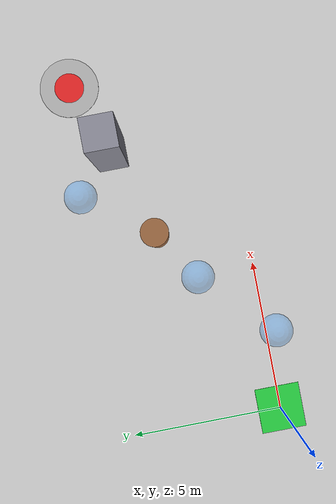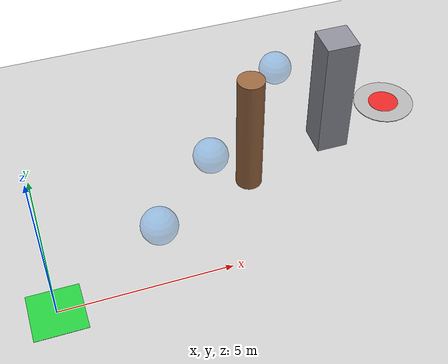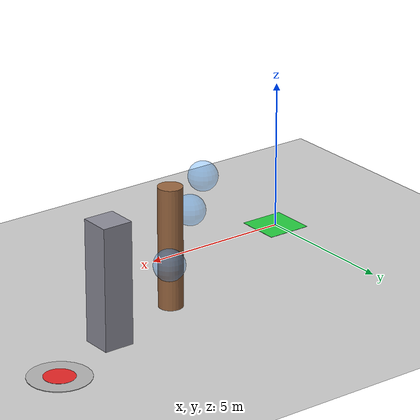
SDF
<?xml version="1.0" ?>
<sdf version="1.6">
  <world name="practice_world">

    <!-- ===== 기본 환경 ===== -->
    <include><uri>model://sun</uri></include>
    <include><uri>model://ground_plane</uri></include>

    <!-- 물리 엔진 설정 -->
    <physics name='default_physics' default='0' type='ode'>
      <gravity>0 0 -9.8066</gravity>
      <ode>
        <solver>
          <type>quick</type>
          <iters>10</iters>
          <sor>1.3</sor>
        </solver>
        <constraints>
          <cfm>0</cfm>
          <erp>0.2</erp>
          <contact_max_correcting_vel>100</contact_max_correcting_vel>
          <contact_surface_layer>0.001</contact_surface_layer>
        </constraints>
      </ode>
      <max_step_size>0.004</max_step_size>
      <real_time_factor>1</real_time_factor>
      <real_time_update_rate>250</real_time_update_rate>
    </physics>

    <!-- ===== Start 표시 ===== -->
    <include>
      <uri>model://start_marker</uri>
      <name>start_pad</name>
      <pose>0 0 0 0 0 0</pose>
    </include>

    <!-- ===== Waypoint 시각화 ===== -->
    <include>
      <uri>model://waypoint_marker</uri>
      <name>wp1_marker</name>
      <pose>3.0 0.0 2.5 0 0 0</pose>
    </include>
    <include>
      <uri>model://waypoint_marker</uri>
      <name>wp2_marker</name>
      <pose>5.0 2.0 2.5 0 0 0</pose>
    </include>
    <include>
      <uri>model://waypoint_marker</uri>
      <name>wp3_marker</name>
      <pose>8.0 5.0 2.5 0 0 0</pose>
    </include>

    <!-- ===== 장애물 ===== -->
    <!-- 장애물 1: 원통 (전봇대 모사) -->
    <model name="obstacle_cylinder_1">
      <static>true</static>
      <pose>6.5 3.0 2.0 0 0 0</pose>
      <link name="link">
        <collision name="collision">
          <geometry>
            <cylinder><radius>0.4</radius><length>4.0</length></cylinder>
          </geometry>
        </collision>
        <visual name="visual">
          <geometry>
            <cylinder><radius>0.4</radius><length>4.0</length></cylinder>
          </geometry>
          <material>
            <ambient>0.5 0.35 0.2 1</ambient>
            <diffuse>0.6 0.4 0.25 1</diffuse>
          </material>
        </visual>
      </link>
    </model>

    <!-- 장애물 2: 사각 박스 (작은 빌딩 모사) -->
    <model name="obstacle_box_1">
      <static>true</static>
      <pose>9.5 4.0 2.0 0 0 0</pose>
      <link name="link">
        <collision name="collision">
          <geometry>
            <box><size>1.0 1.0 4.0</size></box>
          </geometry>
        </collision>
        <visual name="visual">
          <geometry>
            <box><size>1.0 1.0 4.0</size></box>
          </geometry>
          <material>
            <ambient>0.45 0.45 0.5 1</ambient>
            <diffuse>0.55 0.55 0.6 1</diffuse>
          </material>
        </visual>
      </link>
    </model>

    <!-- ===== 랜딩 패드 ===== -->
    <include>
      <uri>model://landing_pad</uri>
      <name>landing_pad</name>
      <pose>12.0 5.0 0 0 0 0</pose>
    </include>

    <!-- 카메라 시점 (Gazebo에서 보기 좋게) -->
    <gui fullscreen='0'>
      <camera name='user_camera'>
        <pose>-3 -3 8 0 0.7 0.5</pose>
      </camera>
    </gui>

  </world>
</sdf>

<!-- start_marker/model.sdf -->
<sdf version='1.6'>
  <model name='start_marker'>
    <static>true</static>
    <link name='link'>
      <pose>0 0 0.005 0 0 0</pose>
      <visual name='visual'>
        <geometry>
          <box><size>1.5 1.5 0.01</size></box>
        </geometry>
        <material>
          <ambient>0.1 0.7 0.2 1</ambient>
          <diffuse>0.15 0.8 0.25 1</diffuse>
          <emissive>0.0 0.3 0.0 1</emissive>
        </material>
      </visual>
    </link>
  </model>
</sdf>

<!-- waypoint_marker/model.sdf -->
<sdf version='1.6'>
  <model name='waypoint_marker'>
    <static>true</static>
    <link name='link'>
      <visual name='visual'>
        <geometry>
          <sphere><radius>0.5</radius></sphere>
        </geometry>
        <material>
          <ambient>0.2 0.6 1.0 0.35</ambient>
          <diffuse>0.2 0.6 1.0 0.35</diffuse>
          <specular>0.1 0.1 0.1 1</specular>
        </material>
        <transparency>0.6</transparency>
        <cast_shadows>false</cast_shadows>
      </visual>
      <!-- collision 없음 → 드론이 통과 가능, 센서에도 인식 안 됨 -->
    </link>
  </model>
</sdf>

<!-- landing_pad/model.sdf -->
<sdf version='1.6'>
  <model name='landing_pad'>
    <static>true</static>

    <link name='pad_base'>
      <pose>0 0 0.01 0 0 0</pose>
      <collision name='collision'>
        <geometry>
          <cylinder><radius>1.0</radius><length>0.02</length></cylinder>
        </geometry>
      </collision>
      <visual name='visual'>
        <geometry>
          <cylinder><radius>1.0</radius><length>0.02</length></cylinder>
        </geometry>
        <material>
          <ambient>0.6 0.6 0.6 1</ambient>
          <diffuse>0.7 0.7 0.7 1</diffuse>
        </material>
      </visual>
    </link>

    <link name='red_target'>
      <pose>0 0 0.025 0 0 0</pose>
      <visual name='visual'>
        <geometry>
          <cylinder><radius>0.5</radius><length>0.005</length></cylinder>
        </geometry>
        <material>
          <ambient>0.8 0.1 0.1 1</ambient>
          <diffuse>0.9 0.15 0.15 1</diffuse>
          <emissive>0.4 0.0 0.0 1</emissive>
        </material>
      </visual>
    </link>

    <joint name='target_joint' type='fixed'>
      <parent>pad_base</parent>
      <child>red_target</child>
    </joint>
  </model>
</sdf>
